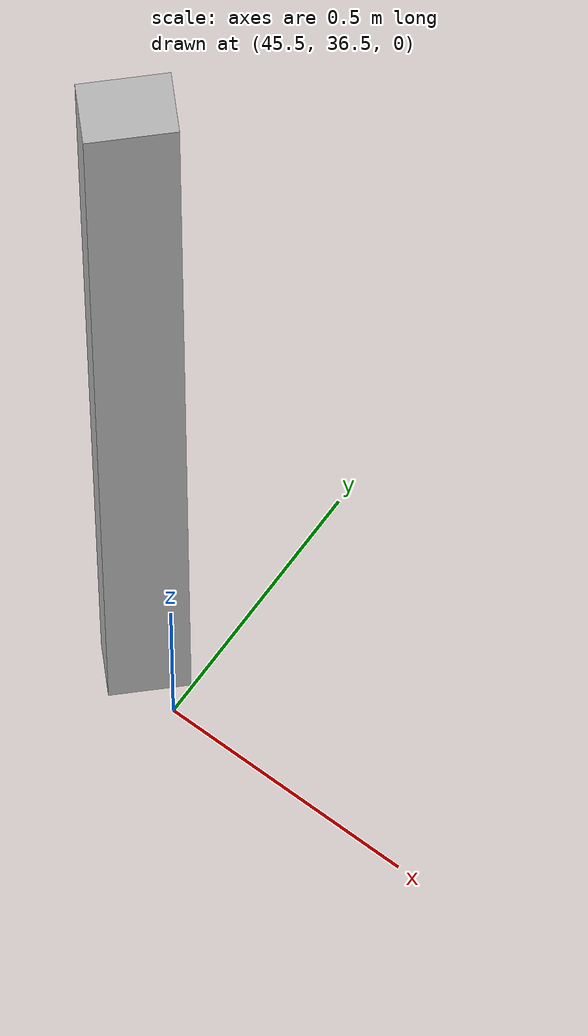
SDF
<?xml version="1.0" ?>
<sdf version="1.6">
  <model name="sps_2349">
    <pose frame="">0 0 0 0 -0 0</pose>
    <static>0</static>
    <self_collide>0</self_collide>
    <allow_auto_disable>0</allow_auto_disable>
    <link name="Wall326">
      <kinematic>0</kinematic>
      <gravity>1</gravity>
      <self_collide>0</self_collide>
      <collision name="collision">
        <geometry>
          <box>
            <size>0.100699 0.15 2.5</size>
          </box>
        </geometry>
        <pose frame="">0 0 0 0 -0 0</pose>
      </collision>
      <visual name="visual">
        <geometry>
          <box>
            <size>0.100699 0.15 2.5</size>
          </box>
        </geometry>
        <pose frame="">0 0 0 0 -0 0</pose>
        <cast_shadows>1</cast_shadows>
        <transparency>0.0</transparency>
      </visual>
      <pose frame="">45.4074 36.5416 1.25 0 0 -0.799542</pose>
    </link>
  </model>
</sdf>
